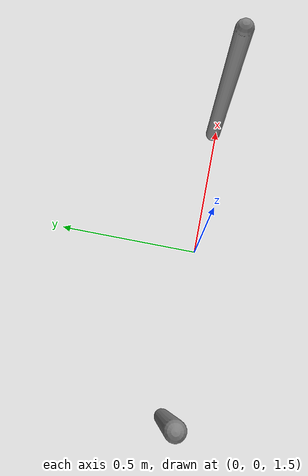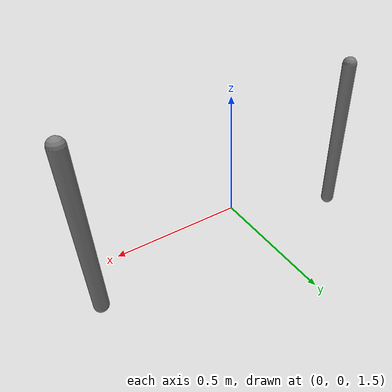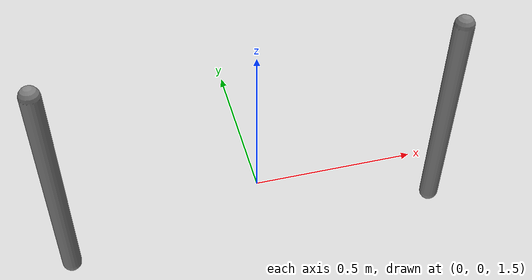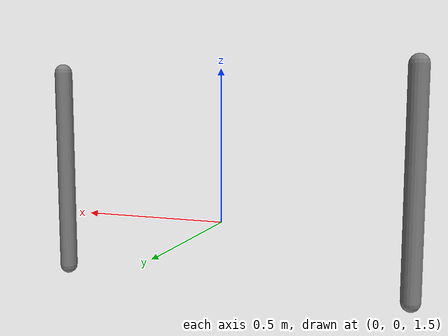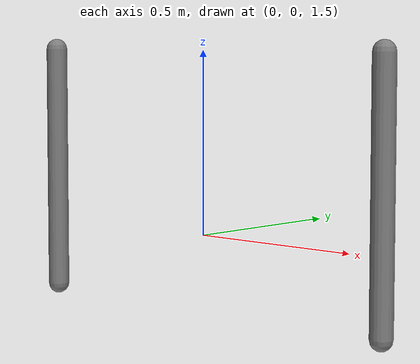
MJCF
<mujoco model="joint-gear">
  <compiler angle="radian"/>
  <option gravity="0 0 -9.81" timestep="0.001">
    <flag energy="enable"/>
  </option>

  <default>
    <geom contype="0" conaffinity="0"/>
  </default>

  <worldbody>
    <body name="arm1" pos="-0.6 0 2.0">
      <joint name="j1" type="hinge" axis="0 1 0" damping="0.1"/>
      <geom name="arm1" type="capsule" fromto="0 0 0 0 0 -0.7" size="0.03" mass="0.5"/>
    </body>
    <body name="arm2" pos="0.6 0 2.0">
      <joint name="j2" type="hinge" axis="0 1 0" damping="0.1"/>
      <geom name="arm2" type="capsule" fromto="0 0 0 0 0 -0.7" size="0.03" mass="0.5"/>
    </body>
  </worldbody>

  <actuator>
    <motor name="drive" joint="j1" gear="1"/>
  </actuator>

  <equality>
    <joint joint1="j2" joint2="j1" polycoef="0 2" solref="0.05 1.0"/>
  </equality>
</mujoco>
